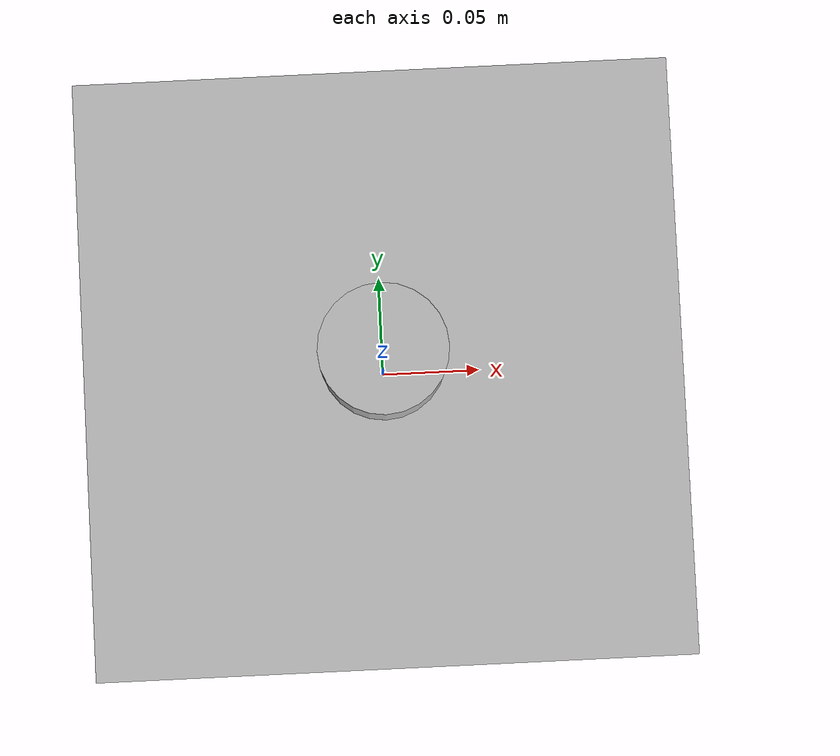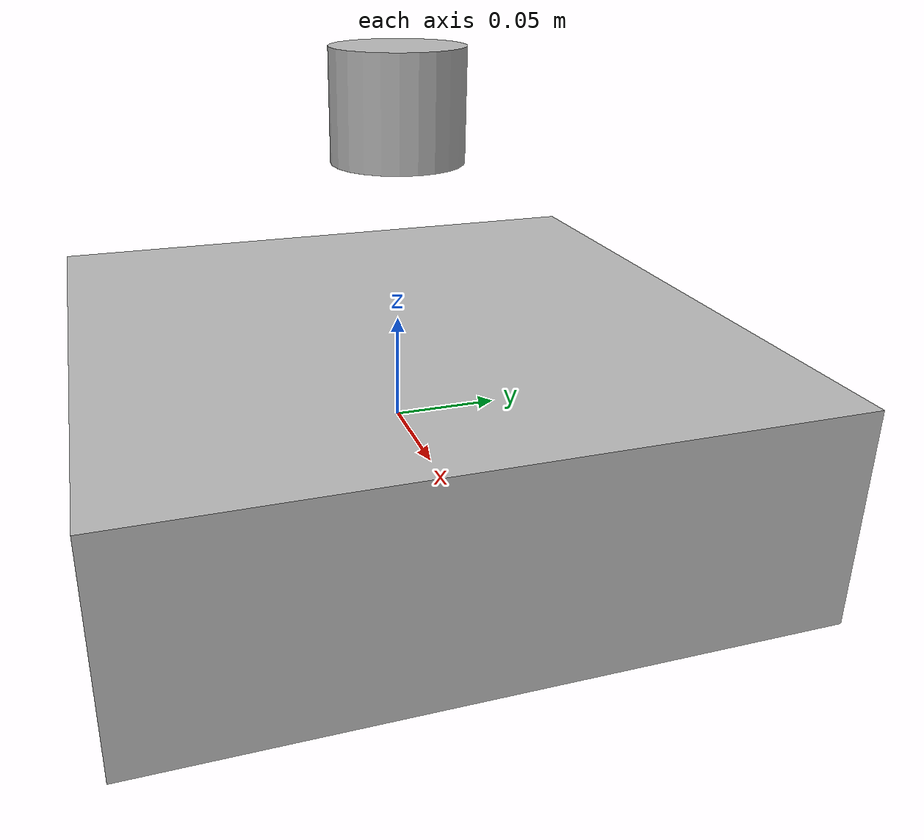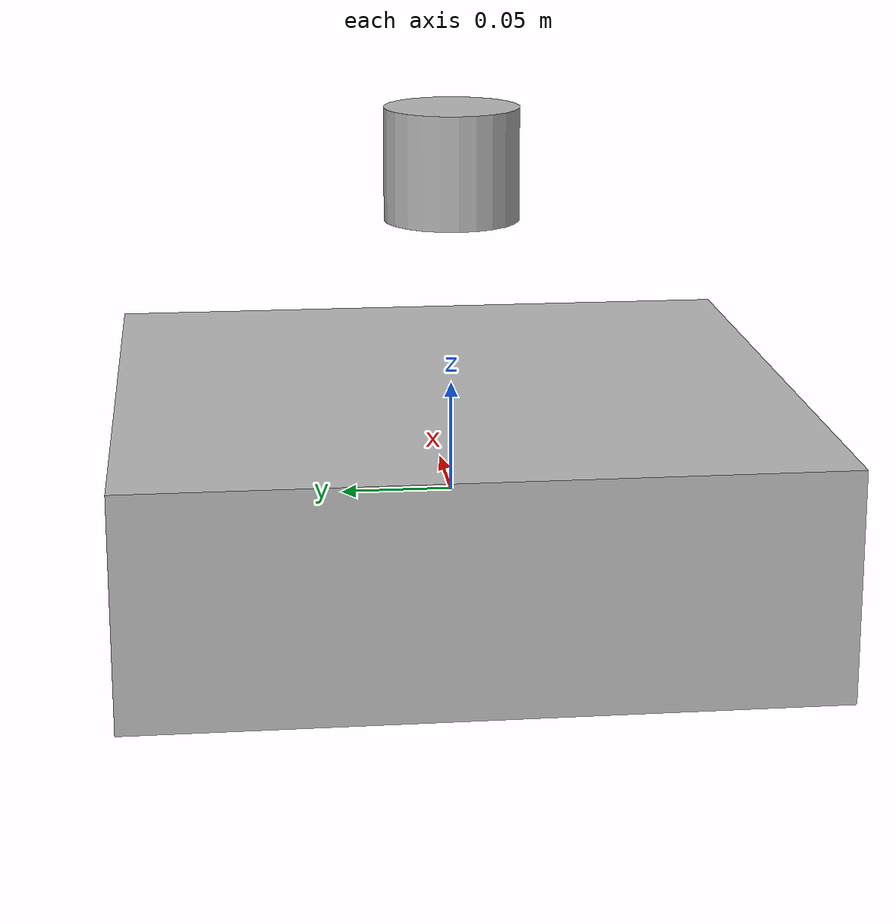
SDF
<sdf version='1.7'>
  <model name='lidar_robot'>
    <link name='base_link'>
      <inertial>
        <pose>0 0 0 0 -0 0</pose>
        <mass>1</mass>
        <inertia>
          <ixx>0.01</ixx>
          <ixy>0</ixy>
          <ixz>0</ixz>
          <iyy>0.01</iyy>
          <iyz>0</iyz>
          <izz>0.01</izz>
        </inertia>
      </inertial>
      <collision name='base_link_collision'>
        <pose>0 0 0 0 -0 0</pose>
        <geometry>
          <box>
            <size>0.3 0.3 0.1</size>
          </box>
        </geometry>
      </collision>
      <collision name='base_link_fixed_joint_lump__lidar_link_collision_1'>
        <pose>0 0 0.15 0 -0 0</pose>
        <geometry>
          <cylinder>
            <length>0.05</length>
            <radius>0.03</radius>
          </cylinder>
        </geometry>
        <surface>
          <contact>
            <ode/>
          </contact>
          <friction>
            <ode/>
          </friction>
        </surface>
      </collision>
      <visual name='base_link_visual'>
        <pose>0 0 0 0 -0 0</pose>
        <geometry>
          <box>
            <size>0.3 0.3 0.1</size>
          </box>
        </geometry>
      </visual>
      <visual name='base_link_fixed_joint_lump__lidar_link_visual_1'>
        <pose>0 0 0.15 0 -0 0</pose>
        <geometry>
          <cylinder>
            <length>0.05</length>
            <radius>0.03</radius>
          </cylinder>
        </geometry>
      </visual>
      <sensor name='lidar' type='gpu_lidar'>
        <lidar>
          <scan>
            <horizontal>
              <samples>720</samples>
              <resolution>1</resolution>
              <min_angle>-1.5708</min_angle>
              <max_angle>1.5708</max_angle>
            </horizontal>
          </scan>
          <range>
            <min>0.12</min>
            <max>8</max>
            <resolution>0.01</resolution>
          </range>
        </lidar>
        <update_rate>20</update_rate>
        <visualize>1</visualize>
        <pose>0 0 0.15 0 -0 0</pose>
      </sensor>
    </link>
  </model>
</sdf>
